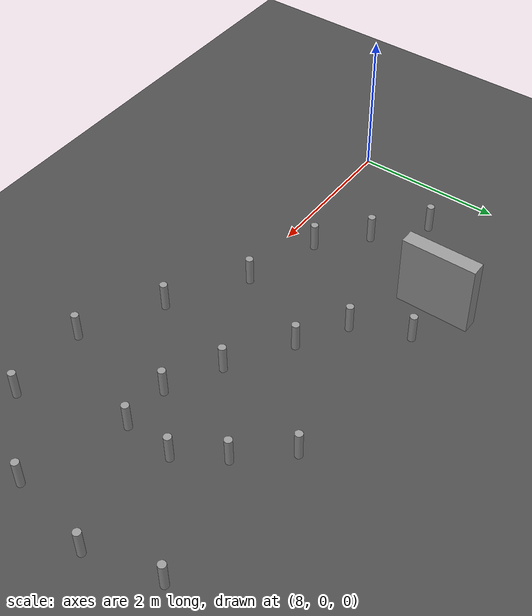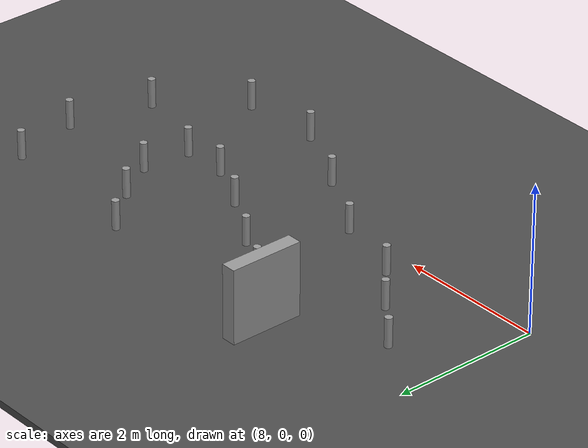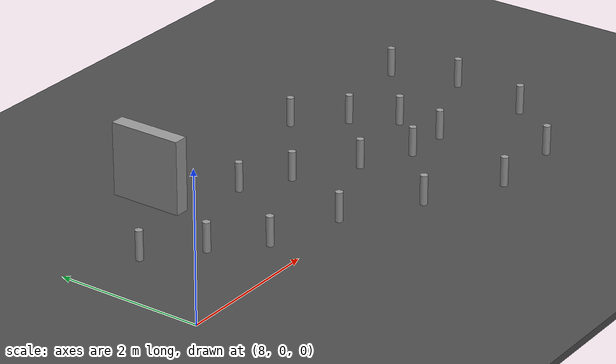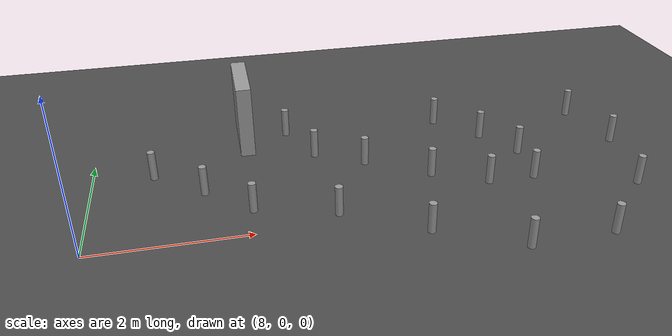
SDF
<sdf version="1.7">
 <world name="default">
  <model name="ground_plane">
   <static>1</static>
   <link name="link">
    <collision name="collision">
     <geometry><plane><normal>0 0 1</normal><size>100 100</size></plane></geometry>
     <surface>
      <contact><collide_bitmask>65535</collide_bitmask></contact>
      <friction><ode><mu>100</mu><mu2>50</mu2></ode></friction>
     </surface>
    </collision>
    <visual name="visual">
     <cast_shadows>0</cast_shadows>
     <geometry><plane><normal>0 0 1</normal><size>100 100</size></plane></geometry>
     <material>
      <script><uri>file://media/materials/scripts/gazebo.material</uri><name>Gazebo/Grey</name></script>
     </material>
    </visual>
   </link>
  </model>
  <model name="Cone_clone_9">
   <link name="link_1">
    <inertial>
     <mass>1</mass>
     <inertia><ixx>0.145833</ixx><ixy>0</ixy><ixz>0</ixz><iyy>0.145833</iyy><iyz>0</iyz><izz>0.125</izz></inertia>
    </inertial>
    <visual name="visual">
     <geometry><cylinder><radius>0.05</radius><length>0.4</length></cylinder></geometry>
     <material>
      <lighting>1</lighting>
      <script><uri>file://media/materials/scripts/gazebo.material</uri><name>Gazebo/Grey</name></script>
      <shader type="pixel"><normal_map>__default__</normal_map></shader>
      <ambient>1 1 1 1</ambient>
      <diffuse>1 1 1 1</diffuse>
      <specular>0.01 0.01 0.01 1</specular>
      <emissive>0 0 0 1</emissive>
     </material>
    </visual>
    <collision name="collision">
     <geometry><cylinder><radius>0.05</radius><length>0.4</length></cylinder></geometry>
     <surface>
      <friction>
       <ode><mu>1</mu><mu2>1</mu2><fdir1>0 0 0</fdir1><slip1>0</slip1><slip2>0</slip2></ode>
       <torsional>
        <coefficient>1</coefficient>
        <patch_radius>0</patch_radius>
        <surface_radius>0</surface_radius>
        <use_patch_radius>1</use_patch_radius>
        <ode><slip>0</slip></ode>
       </torsional>
      </friction>
      <bounce><restitution_coefficient>0</restitution_coefficient><threshold>1e+06</threshold></bounce>
      <contact>
       <collide_without_contact>0</collide_without_contact>
       <collide_without_contact_bitmask>1</collide_without_contact_bitmask>
       <collide_bitmask>1</collide_bitmask>
       <ode>
        <soft_cfm>0</soft_cfm>
        <soft_erp>0.2</soft_erp>
        <kp>1e+13</kp>
        <kd>1</kd>
        <max_vel>0.01</max_vel>
        <min_depth>0</min_depth>
       </ode>
       <bullet>
        <split_impulse>1</split_impulse>
        <split_impulse_penetration_threshold>-0.01</split_impulse_penetration_threshold>
        <soft_cfm>0</soft_cfm>
        <soft_erp>0.2</soft_erp>
        <kp>1e+13</kp>
        <kd>1</kd>
       </bullet>
      </contact>
     </surface>
    </collision>
   </link>
   <static>0</static>
   <pose>10.974 1.61904 0.249999 -4.4e-05 8.3e-05 6.8e-05</pose>
  </model>
  <model name="Cone_clone_10">
   <link name="link_1">
    <inertial>
     <mass>1</mass>
     <inertia><ixx>0.145833</ixx><ixy>0</ixy><ixz>0</ixz><iyy>0.145833</iyy><iyz>0</iyz><izz>0.125</izz></inertia>
    </inertial>
    <visual name="visual">
     <geometry><cylinder><radius>0.05</radius><length>0.4</length></cylinder></geometry>
     <material>
      <lighting>1</lighting>
      <script><uri>file://media/materials/scripts/gazebo.material</uri><name>Gazebo/Grey</name></script>
      <shader type="pixel"><normal_map>__default__</normal_map></shader>
      <ambient>1 1 1 1</ambient>
      <diffuse>1 1 1 1</diffuse>
      <specular>0.01 0.01 0.01 1</specular>
      <emissive>0 0 0 1</emissive>
     </material>
    </visual>
    <collision name="collision">
     <geometry><cylinder><radius>0.05</radius><length>0.4</length></cylinder></geometry>
     <surface>
      <friction>
       <ode><mu>1</mu><mu2>1</mu2><fdir1>0 0 0</fdir1><slip1>0</slip1><slip2>0</slip2></ode>
       <torsional>
        <coefficient>1</coefficient>
        <patch_radius>0</patch_radius>
        <surface_radius>0</surface_radius>
        <use_patch_radius>1</use_patch_radius>
        <ode><slip>0</slip></ode>
       </torsional>
      </friction>
      <bounce><restitution_coefficient>0</restitution_coefficient><threshold>1e+06</threshold></bounce>
      <contact>
       <collide_without_contact>0</collide_without_contact>
       <collide_without_contact_bitmask>1</collide_without_contact_bitmask>
       <collide_bitmask>1</collide_bitmask>
       <ode>
        <soft_cfm>0</soft_cfm>
        <soft_erp>0.2</soft_erp>
        <kp>1e+13</kp>
        <kd>1</kd>
        <max_vel>0.01</max_vel>
        <min_depth>0</min_depth>
       </ode>
       <bullet>
        <split_impulse>1</split_impulse>
        <split_impulse_penetration_threshold>-0.01</split_impulse_penetration_threshold>
        <soft_cfm>0</soft_cfm>
        <soft_erp>0.2</soft_erp>
        <kp>1e+13</kp>
        <kd>1</kd>
       </bullet>
      </contact>
     </surface>
    </collision>
   </link>
   <static>0</static>
   <pose>11.6072 1.25623 0.25 -7.7e-05 6.1e-05 8.5e-05</pose>
  </model>
  <model name="Cone_clone_11">
   <link name="link_1">
    <inertial>
     <mass>1</mass>
     <inertia><ixx>0.145833</ixx><ixy>0</ixy><ixz>0</ixz><iyy>0.145833</iyy><iyz>0</iyz><izz>0.125</izz></inertia>
    </inertial>
    <visual name="visual">
     <geometry><cylinder><radius>0.05</radius><length>0.4</length></cylinder></geometry>
     <material>
      <lighting>1</lighting>
      <script><uri>file://media/materials/scripts/gazebo.material</uri><name>Gazebo/Grey</name></script>
      <shader type="pixel"><normal_map>__default__</normal_map></shader>
      <ambient>1 1 1 1</ambient>
      <diffuse>1 1 1 1</diffuse>
      <specular>0.01 0.01 0.01 1</specular>
      <emissive>0 0 0 1</emissive>
     </material>
    </visual>
    <collision name="collision">
     <geometry><cylinder><radius>0.05</radius><length>0.4</length></cylinder></geometry>
     <surface>
      <friction>
       <ode><mu>1</mu><mu2>1</mu2><fdir1>0 0 0</fdir1><slip1>0</slip1><slip2>0</slip2></ode>
       <torsional>
        <coefficient>1</coefficient>
        <patch_radius>0</patch_radius>
        <surface_radius>0</surface_radius>
        <use_patch_radius>1</use_patch_radius>
        <ode><slip>0</slip></ode>
       </torsional>
      </friction>
      <bounce><restitution_coefficient>0</restitution_coefficient><threshold>1e+06</threshold></bounce>
      <contact>
       <collide_without_contact>0</collide_without_contact>
       <collide_without_contact_bitmask>1</collide_without_contact_bitmask>
       <collide_bitmask>1</collide_bitmask>
       <ode>
        <soft_cfm>0</soft_cfm>
        <soft_erp>0.2</soft_erp>
        <kp>1e+13</kp>
        <kd>1</kd>
        <max_vel>0.01</max_vel>
        <min_depth>0</min_depth>
       </ode>
       <bullet>
        <split_impulse>1</split_impulse>
        <split_impulse_penetration_threshold>-0.01</split_impulse_penetration_threshold>
        <soft_cfm>0</soft_cfm>
        <soft_erp>0.2</soft_erp>
        <kp>1e+13</kp>
        <kd>1</kd>
       </bullet>
      </contact>
     </surface>
    </collision>
   </link>
   <static>0</static>
   <pose>12.4053 0.765212 0.25 -7.7e-05 6.1e-05 8.4e-05</pose>
  </model>
  <model name="Cone_clone_12">
   <link name="link_1">
    <inertial>
     <mass>1</mass>
     <inertia><ixx>0.145833</ixx><ixy>0</ixy><ixz>0</ixz><iyy>0.145833</iyy><iyz>0</iyz><izz>0.125</izz></inertia>
    </inertial>
    <visual name="visual">
     <geometry><cylinder><radius>0.05</radius><length>0.4</length></cylinder></geometry>
     <material>
      <lighting>1</lighting>
      <script><uri>file://media/materials/scripts/gazebo.material</uri><name>Gazebo/Grey</name></script>
      <shader type="pixel"><normal_map>__default__</normal_map></shader>
      <ambient>1 1 1 1</ambient>
      <diffuse>1 1 1 1</diffuse>
      <specular>0.01 0.01 0.01 1</specular>
      <emissive>0 0 0 1</emissive>
     </material>
    </visual>
    <collision name="collision">
     <geometry><cylinder><radius>0.05</radius><length>0.4</length></cylinder></geometry>
     <surface>
      <friction>
       <ode><mu>1</mu><mu2>1</mu2><fdir1>0 0 0</fdir1><slip1>0</slip1><slip2>0</slip2></ode>
       <torsional>
        <coefficient>1</coefficient>
        <patch_radius>0</patch_radius>
        <surface_radius>0</surface_radius>
        <use_patch_radius>1</use_patch_radius>
        <ode><slip>0</slip></ode>
       </torsional>
      </friction>
      <bounce><restitution_coefficient>0</restitution_coefficient><threshold>1e+06</threshold></bounce>
      <contact>
       <collide_without_contact>0</collide_without_contact>
       <collide_without_contact_bitmask>1</collide_without_contact_bitmask>
       <collide_bitmask>1</collide_bitmask>
       <ode>
        <soft_cfm>0</soft_cfm>
        <soft_erp>0.2</soft_erp>
        <kp>1e+13</kp>
        <kd>1</kd>
        <max_vel>0.01</max_vel>
        <min_depth>0</min_depth>
       </ode>
       <bullet>
        <split_impulse>1</split_impulse>
        <split_impulse_penetration_threshold>-0.01</split_impulse_penetration_threshold>
        <soft_cfm>0</soft_cfm>
        <soft_erp>0.2</soft_erp>
        <kp>1e+13</kp>
        <kd>1</kd>
       </bullet>
      </contact>
     </surface>
    </collision>
   </link>
   <static>0</static>
   <pose>13.0926 0.421904 0.250002 -2.2e-05 9.1e-05 8.3e-05</pose>
  </model>
  <model name="Cone_clone_13">
   <link name="link_1">
    <inertial>
     <mass>1</mass>
     <inertia><ixx>0.145833</ixx><ixy>0</ixy><ixz>0</ixz><iyy>0.145833</iyy><iyz>0</iyz><izz>0.125</izz></inertia>
    </inertial>
    <visual name="visual">
     <geometry><cylinder><radius>0.05</radius><length>0.4</length></cylinder></geometry>
     <material>
      <lighting>1</lighting>
      <script><uri>file://media/materials/scripts/gazebo.material</uri><name>Gazebo/Grey</name></script>
      <shader type="pixel"><normal_map>__default__</normal_map></shader>
      <ambient>1 1 1 1</ambient>
      <diffuse>1 1 1 1</diffuse>
      <specular>0.01 0.01 0.01 1</specular>
      <emissive>0 0 0 1</emissive>
     </material>
    </visual>
    <collision name="collision">
     <geometry><cylinder><radius>0.05</radius><length>0.4</length></cylinder></geometry>
     <surface>
      <friction>
       <ode><mu>1</mu><mu2>1</mu2><fdir1>0 0 0</fdir1><slip1>0</slip1><slip2>0</slip2></ode>
       <torsional>
        <coefficient>1</coefficient>
        <patch_radius>0</patch_radius>
        <surface_radius>0</surface_radius>
        <use_patch_radius>1</use_patch_radius>
        <ode><slip>0</slip></ode>
       </torsional>
      </friction>
      <bounce><restitution_coefficient>0</restitution_coefficient><threshold>1e+06</threshold></bounce>
      <contact>
       <collide_without_contact>0</collide_without_contact>
       <collide_without_contact_bitmask>1</collide_without_contact_bitmask>
       <collide_bitmask>1</collide_bitmask>
       <ode>
        <soft_cfm>0</soft_cfm>
        <soft_erp>0.2</soft_erp>
        <kp>1e+13</kp>
        <kd>1</kd>
        <max_vel>0.01</max_vel>
        <min_depth>0</min_depth>
       </ode>
       <bullet>
        <split_impulse>1</split_impulse>
        <split_impulse_penetration_threshold>-0.01</split_impulse_penetration_threshold>
        <soft_cfm>0</soft_cfm>
        <soft_erp>0.2</soft_erp>
        <kp>1e+13</kp>
        <kd>1</kd>
       </bullet>
      </contact>
     </surface>
    </collision>
   </link>
   <static>0</static>
   <pose>13.7188 0.418644 0.25 -7.3e-05 6.5e-05 9e-05</pose>
  </model>
  <model name="Cone_clone_14">
   <link name="link_1">
    <inertial>
     <mass>1</mass>
     <inertia><ixx>0.145833</ixx><ixy>0</ixy><ixz>0</ixz><iyy>0.145833</iyy><iyz>0</iyz><izz>0.125</izz></inertia>
    </inertial>
    <visual name="visual">
     <geometry><cylinder><radius>0.05</radius><length>0.4</length></cylinder></geometry>
     <material>
      <lighting>1</lighting>
      <script><uri>file://media/materials/scripts/gazebo.material</uri><name>Gazebo/Grey</name></script>
      <shader type="pixel"><normal_map>__default__</normal_map></shader>
      <ambient>1 1 1 1</ambient>
      <diffuse>1 1 1 1</diffuse>
      <specular>0.01 0.01 0.01 1</specular>
      <emissive>0 0 0 1</emissive>
     </material>
    </visual>
    <collision name="collision">
     <geometry><cylinder><radius>0.05</radius><length>0.4</length></cylinder></geometry>
     <surface>
      <friction>
       <ode><mu>1</mu><mu2>1</mu2><fdir1>0 0 0</fdir1><slip1>0</slip1><slip2>0</slip2></ode>
       <torsional>
        <coefficient>1</coefficient>
        <patch_radius>0</patch_radius>
        <surface_radius>0</surface_radius>
        <use_patch_radius>1</use_patch_radius>
        <ode><slip>0</slip></ode>
       </torsional>
      </friction>
      <bounce><restitution_coefficient>0</restitution_coefficient><threshold>1e+06</threshold></bounce>
      <contact>
       <collide_without_contact>0</collide_without_contact>
       <collide_without_contact_bitmask>1</collide_without_contact_bitmask>
       <collide_bitmask>1</collide_bitmask>
       <ode>
        <soft_cfm>0</soft_cfm>
        <soft_erp>0.2</soft_erp>
        <kp>1e+13</kp>
        <kd>1</kd>
        <max_vel>0.01</max_vel>
        <min_depth>0</min_depth>
       </ode>
       <bullet>
        <split_impulse>1</split_impulse>
        <split_impulse_penetration_threshold>-0.01</split_impulse_penetration_threshold>
        <soft_cfm>0</soft_cfm>
        <soft_erp>0.2</soft_erp>
        <kp>1e+13</kp>
        <kd>1</kd>
       </bullet>
      </contact>
     </surface>
    </collision>
   </link>
   <static>0</static>
   <pose>13.7754 1.08409 0.25 -7.6e-05 6.2e-05 8.5e-05</pose>
  </model>
  <model name="Cone_clone_15">
   <link name="link_1">
    <inertial>
     <mass>1</mass>
     <inertia><ixx>0.145833</ixx><ixy>0</ixy><ixz>0</ixz><iyy>0.145833</iyy><iyz>0</iyz><izz>0.125</izz></inertia>
    </inertial>
    <visual name="visual">
     <geometry><cylinder><radius>0.05</radius><length>0.4</length></cylinder></geometry>
     <material>
      <lighting>1</lighting>
      <script><uri>file://media/materials/scripts/gazebo.material</uri><name>Gazebo/Grey</name></script>
      <shader type="pixel"><normal_map>__default__</normal_map></shader>
      <ambient>1 1 1 1</ambient>
      <diffuse>1 1 1 1</diffuse>
      <specular>0.01 0.01 0.01 1</specular>
      <emissive>0 0 0 1</emissive>
     </material>
    </visual>
    <collision name="collision">
     <geometry><cylinder><radius>0.05</radius><length>0.4</length></cylinder></geometry>
     <surface>
      <friction>
       <ode><mu>1</mu><mu2>1</mu2><fdir1>0 0 0</fdir1><slip1>0</slip1><slip2>0</slip2></ode>
       <torsional>
        <coefficient>1</coefficient>
        <patch_radius>0</patch_radius>
        <surface_radius>0</surface_radius>
        <use_patch_radius>1</use_patch_radius>
        <ode><slip>0</slip></ode>
       </torsional>
      </friction>
      <bounce><restitution_coefficient>0</restitution_coefficient><threshold>1e+06</threshold></bounce>
      <contact>
       <collide_without_contact>0</collide_without_contact>
       <collide_without_contact_bitmask>1</collide_without_contact_bitmask>
       <collide_bitmask>1</collide_bitmask>
       <ode>
        <soft_cfm>0</soft_cfm>
        <soft_erp>0.2</soft_erp>
        <kp>1e+13</kp>
        <kd>1</kd>
        <max_vel>0.01</max_vel>
        <min_depth>0</min_depth>
       </ode>
       <bullet>
        <split_impulse>1</split_impulse>
        <split_impulse_penetration_threshold>-0.01</split_impulse_penetration_threshold>
        <soft_cfm>0</soft_cfm>
        <soft_erp>0.2</soft_erp>
        <kp>1e+13</kp>
        <kd>1</kd>
       </bullet>
      </contact>
     </surface>
    </collision>
   </link>
   <static>0</static>
   <pose>13.4188 1.64424 0.25 -7.6e-05 6.1e-05 9.4e-05</pose>
  </model>
  <model name="Cone_clone_16">
   <link name="link_1">
    <inertial>
     <mass>1</mass>
     <inertia><ixx>0.145833</ixx><ixy>0</ixy><ixz>0</ixz><iyy>0.145833</iyy><iyz>0</iyz><izz>0.125</izz></inertia>
    </inertial>
    <visual name="visual">
     <geometry><cylinder><radius>0.05</radius><length>0.4</length></cylinder></geometry>
     <material>
      <lighting>1</lighting>
      <script><uri>file://media/materials/scripts/gazebo.material</uri><name>Gazebo/Grey</name></script>
      <shader type="pixel"><normal_map>__default__</normal_map></shader>
      <ambient>1 1 1 1</ambient>
      <diffuse>1 1 1 1</diffuse>
      <specular>0.01 0.01 0.01 1</specular>
      <emissive>0 0 0 1</emissive>
     </material>
    </visual>
    <collision name="collision">
     <geometry><cylinder><radius>0.05</radius><length>0.4</length></cylinder></geometry>
     <surface>
      <friction>
       <ode><mu>1</mu><mu2>1</mu2><fdir1>0 0 0</fdir1><slip1>0</slip1><slip2>0</slip2></ode>
       <torsional>
        <coefficient>1</coefficient>
        <patch_radius>0</patch_radius>
        <surface_radius>0</surface_radius>
        <use_patch_radius>1</use_patch_radius>
        <ode><slip>0</slip></ode>
       </torsional>
      </friction>
      <bounce><restitution_coefficient>0</restitution_coefficient><threshold>1e+06</threshold></bounce>
      <contact>
       <collide_without_contact>0</collide_without_contact>
       <collide_without_contact_bitmask>1</collide_without_contact_bitmask>
       <collide_bitmask>1</collide_bitmask>
       <ode>
        <soft_cfm>0</soft_cfm>
        <soft_erp>0.2</soft_erp>
        <kp>1e+13</kp>
        <kd>1</kd>
        <max_vel>0.01</max_vel>
        <min_depth>0</min_depth>
       </ode>
       <bullet>
        <split_impulse>1</split_impulse>
        <split_impulse_penetration_threshold>-0.01</split_impulse_penetration_threshold>
        <soft_cfm>0</soft_cfm>
        <soft_erp>0.2</soft_erp>
        <kp>1e+13</kp>
        <kd>1</kd>
       </bullet>
      </contact>
     </surface>
    </collision>
   </link>
   <static>0</static>
   <pose>12.9016 2.21967 0.25 -7.6e-05 6.1e-05 8.8e-05</pose>
  </model>
  <model name="Obstacle_clone">
   <link name="link_4">
    <inertial>
     <mass>1</mass>
     <inertia>
      <ixx>0.166667</ixx>
      <ixy>0</ixy>
      <ixz>0</ixz>
      <iyy>0.166667</iyy>
      <iyz>0</iyz>
      <izz>0.166667</izz>
     </inertia>
    </inertial>
    <visual name="visual">
     <geometry><box><size>0.2 1 1</size></box></geometry>
     <material>
      <lighting>1</lighting>
      <script><uri>file://media/materials/scripts/gazebo.material</uri><name>Gazebo/Grey</name></script>
      <shader type="pixel"><normal_map>__default__</normal_map></shader>
      <ambient>0 0 0 1</ambient>
      <diffuse>0 0 0 1</diffuse>
      <specular>0.01 0.01 0.01 1</specular>
      <emissive>0 0 0 1</emissive>
     </material>
    </visual>
    <collision name="collision">
     <geometry><box><size>0.2 1 1</size></box></geometry>
     <surface>
      <friction>
       <ode><mu>1</mu><mu2>1</mu2><fdir1>0 0 0</fdir1><slip1>0</slip1><slip2>0</slip2></ode>
       <torsional>
        <coefficient>1</coefficient>
        <patch_radius>0</patch_radius>
        <surface_radius>0</surface_radius>
        <use_patch_radius>1</use_patch_radius>
        <ode><slip>0</slip></ode>
       </torsional>
      </friction>
      <bounce><restitution_coefficient>0</restitution_coefficient><threshold>1e+06</threshold></bounce>
      <contact>
       <collide_without_contact>0</collide_without_contact>
       <collide_without_contact_bitmask>1</collide_without_contact_bitmask>
       <collide_bitmask>1</collide_bitmask>
       <ode>
        <soft_cfm>0</soft_cfm>
        <soft_erp>0.2</soft_erp>
        <kp>1e+13</kp>
        <kd>1</kd>
        <max_vel>0.01</max_vel>
        <min_depth>0</min_depth>
       </ode>
       <bullet>
        <split_impulse>1</split_impulse>
        <split_impulse_penetration_threshold>-0.01</split_impulse_penetration_threshold>
        <soft_cfm>0</soft_cfm>
        <soft_erp>0.2</soft_erp>
        <kp>1e+13</kp>
        <kd>1</kd>
       </bullet>
      </contact>
     </surface>
    </collision>
   </link>
   <static>0</static>
   <pose>10.0711 2.31653 0.55 0 0 -6e-06</pose>
  </model>
  <model name="Cone_clone_9_clone">
   <link name="link_1">
    <inertial>
     <mass>1</mass>
     <inertia><ixx>0.145833</ixx><ixy>0</ixy><ixz>0</ixz><iyy>0.145833</iyy><iyz>0</iyz><izz>0.125</izz></inertia>
    </inertial>
    <visual name="visual">
     <geometry><cylinder><radius>0.05</radius><length>0.4</length></cylinder></geometry>
     <material>
      <lighting>1</lighting>
      <script><uri>file://media/materials/scripts/gazebo.material</uri><name>Gazebo/Grey</name></script>
      <shader type="pixel"><normal_map>__default__</normal_map></shader>
      <ambient>1 1 1 1</ambient>
      <diffuse>1 1 1 1</diffuse>
      <specular>0.01 0.01 0.01 1</specular>
      <emissive>0 0 0 1</emissive>
     </material>
    </visual>
    <collision name="collision">
     <geometry><cylinder><radius>0.05</radius><length>0.4</length></cylinder></geometry>
     <surface>
      <friction>
       <ode><mu>1</mu><mu2>1</mu2><fdir1>0 0 0</fdir1><slip1>0</slip1><slip2>0</slip2></ode>
       <torsional>
        <coefficient>1</coefficient>
        <patch_radius>0</patch_radius>
        <surface_radius>0</surface_radius>
        <use_patch_radius>1</use_patch_radius>
        <ode><slip>0</slip></ode>
       </torsional>
      </friction>
      <bounce><restitution_coefficient>0</restitution_coefficient><threshold>1e+06</threshold></bounce>
      <contact>
       <collide_without_contact>0</collide_without_contact>
       <collide_without_contact_bitmask>1</collide_without_contact_bitmask>
       <collide_bitmask>1</collide_bitmask>
       <ode>
        <soft_cfm>0</soft_cfm>
        <soft_erp>0.2</soft_erp>
        <kp>1e+13</kp>
        <kd>1</kd>
        <max_vel>0.01</max_vel>
        <min_depth>0</min_depth>
       </ode>
       <bullet>
        <split_impulse>1</split_impulse>
        <split_impulse_penetration_threshold>-0.01</split_impulse_penetration_threshold>
        <soft_cfm>0</soft_cfm>
        <soft_erp>0.2</soft_erp>
        <kp>1e+13</kp>
        <kd>1</kd>
       </bullet>
      </contact>
     </surface>
    </collision>
   </link>
   <static>0</static>
   <pose>10.0136 0.430466 0.25 -2.1e-05 5.9e-05 4.4e-05</pose>
  </model>
  <model name="Cone_clone_9_clone_0">
   <link name="link_1">
    <inertial>
     <mass>1</mass>
     <inertia><ixx>0.145833</ixx><ixy>0</ixy><ixz>0</ixz><iyy>0.145833</iyy><iyz>0</iyz><izz>0.125</izz></inertia>
    </inertial>
    <visual name="visual">
     <geometry><cylinder><radius>0.05</radius><length>0.4</length></cylinder></geometry>
     <material>
      <lighting>1</lighting>
      <script><uri>file://media/materials/scripts/gazebo.material</uri><name>Gazebo/Grey</name></script>
      <shader type="pixel"><normal_map>__default__</normal_map></shader>
      <ambient>1 1 1 1</ambient>
      <diffuse>1 1 1 1</diffuse>
      <specular>0.01 0.01 0.01 1</specular>
      <emissive>0 0 0 1</emissive>
     </material>
    </visual>
    <collision name="collision">
     <geometry><cylinder><radius>0.05</radius><length>0.4</length></cylinder></geometry>
     <surface>
      <friction>
       <ode><mu>1</mu><mu2>1</mu2><fdir1>0 0 0</fdir1><slip1>0</slip1><slip2>0</slip2></ode>
       <torsional>
        <coefficient>1</coefficient>
        <patch_radius>0</patch_radius>
        <surface_radius>0</surface_radius>
        <use_patch_radius>1</use_patch_radius>
        <ode><slip>0</slip></ode>
       </torsional>
      </friction>
      <bounce><restitution_coefficient>0</restitution_coefficient><threshold>1e+06</threshold></bounce>
      <contact>
       <collide_without_contact>0</collide_without_contact>
       <collide_without_contact_bitmask>1</collide_without_contact_bitmask>
       <collide_bitmask>1</collide_bitmask>
       <ode>
        <soft_cfm>0</soft_cfm>
        <soft_erp>0.2</soft_erp>
        <kp>1e+13</kp>
        <kd>1</kd>
        <max_vel>0.01</max_vel>
        <min_depth>0</min_depth>
       </ode>
       <bullet>
        <split_impulse>1</split_impulse>
        <split_impulse_penetration_threshold>-0.01</split_impulse_penetration_threshold>
        <soft_cfm>0</soft_cfm>
        <soft_erp>0.2</soft_erp>
        <kp>1e+13</kp>
        <kd>1</kd>
       </bullet>
      </contact>
     </surface>
    </collision>
   </link>
   <static>0</static>
   <pose>11.025 0.123066 0.25 -5.3e-05 7.8e-05 4.6e-05</pose>
  </model>
  <model name="Cone_clone_9_clone_1">
   <link name="link_1">
    <inertial>
     <mass>1</mass>
     <inertia><ixx>0.145833</ixx><ixy>0</ixy><ixz>0</ixz><iyy>0.145833</iyy><iyz>0</iyz><izz>0.125</izz></inertia>
    </inertial>
    <visual name="visual">
     <geometry><cylinder><radius>0.05</radius><length>0.4</length></cylinder></geometry>
     <material>
      <lighting>1</lighting>
      <script><uri>file://media/materials/scripts/gazebo.material</uri><name>Gazebo/Grey</name></script>
      <shader type="pixel"><normal_map>__default__</normal_map></shader>
      <ambient>1 1 1 1</ambient>
      <diffuse>1 1 1 1</diffuse>
      <specular>0.01 0.01 0.01 1</specular>
      <emissive>0 0 0 1</emissive>
     </material>
    </visual>
    <collision name="collision">
     <geometry><cylinder><radius>0.05</radius><length>0.4</length></cylinder></geometry>
     <surface>
      <friction>
       <ode><mu>1</mu><mu2>1</mu2><fdir1>0 0 0</fdir1><slip1>0</slip1><slip2>0</slip2></ode>
       <torsional>
        <coefficient>1</coefficient>
        <patch_radius>0</patch_radius>
        <surface_radius>0</surface_radius>
        <use_patch_radius>1</use_patch_radius>
        <ode><slip>0</slip></ode>
       </torsional>
      </friction>
      <bounce><restitution_coefficient>0</restitution_coefficient><threshold>1e+06</threshold></bounce>
      <contact>
       <collide_without_contact>0</collide_without_contact>
       <collide_without_contact_bitmask>1</collide_without_contact_bitmask>
       <collide_bitmask>1</collide_bitmask>
       <ode>
        <soft_cfm>0</soft_cfm>
        <soft_erp>0.2</soft_erp>
        <kp>1e+13</kp>
        <kd>1</kd>
        <max_vel>0.01</max_vel>
        <min_depth>0</min_depth>
       </ode>
       <bullet>
        <split_impulse>1</split_impulse>
        <split_impulse_penetration_threshold>-0.01</split_impulse_penetration_threshold>
        <soft_cfm>0</soft_cfm>
        <soft_erp>0.2</soft_erp>
        <kp>1e+13</kp>
        <kd>1</kd>
       </bullet>
      </contact>
     </surface>
    </collision>
   </link>
   <static>0</static>
   <pose>12.0168 -0.463126 0.249999 -6.7e-05 3.7e-05 4.5e-05</pose>
  </model>
  <model name="Cone_clone_9_clone_2">
   <link name="link_1">
    <inertial>
     <mass>1</mass>
     <inertia><ixx>0.145833</ixx><ixy>0</ixy><ixz>0</ixz><iyy>0.145833</iyy><iyz>0</iyz><izz>0.125</izz></inertia>
    </inertial>
    <visual name="visual">
     <geometry><cylinder><radius>0.05</radius><length>0.4</length></cylinder></geometry>
     <material>
      <lighting>1</lighting>
      <script><uri>file://media/materials/scripts/gazebo.material</uri><name>Gazebo/Grey</name></script>
      <shader type="pixel"><normal_map>__default__</normal_map></shader>
      <ambient>1 1 1 1</ambient>
      <diffuse>1 1 1 1</diffuse>
      <specular>0.01 0.01 0.01 1</specular>
      <emissive>0 0 0 1</emissive>
     </material>
    </visual>
    <collision name="collision">
     <geometry><cylinder><radius>0.05</radius><length>0.4</length></cylinder></geometry>
     <surface>
      <friction>
       <ode><mu>1</mu><mu2>1</mu2><fdir1>0 0 0</fdir1><slip1>0</slip1><slip2>0</slip2></ode>
       <torsional>
        <coefficient>1</coefficient>
        <patch_radius>0</patch_radius>
        <surface_radius>0</surface_radius>
        <use_patch_radius>1</use_patch_radius>
        <ode><slip>0</slip></ode>
       </torsional>
      </friction>
      <bounce><restitution_coefficient>0</restitution_coefficient><threshold>1e+06</threshold></bounce>
      <contact>
       <collide_without_contact>0</collide_without_contact>
       <collide_without_contact_bitmask>1</collide_without_contact_bitmask>
       <collide_bitmask>1</collide_bitmask>
       <ode>
        <soft_cfm>0</soft_cfm>
        <soft_erp>0.2</soft_erp>
        <kp>1e+13</kp>
        <kd>1</kd>
        <max_vel>0.01</max_vel>
        <min_depth>0</min_depth>
       </ode>
       <bullet>
        <split_impulse>1</split_impulse>
        <split_impulse_penetration_threshold>-0.01</split_impulse_penetration_threshold>
        <soft_cfm>0</soft_cfm>
        <soft_erp>0.2</soft_erp>
        <kp>1e+13</kp>
        <kd>1</kd>
       </bullet>
      </contact>
     </surface>
    </collision>
   </link>
   <static>0</static>
   <pose>13.037 -0.998943 0.250001 -2.8e-05 9e-05 2.6e-05</pose>
  </model>
  <model name="Cone_clone_9_clone_3">
   <link name="link_1">
    <inertial>
     <mass>1</mass>
     <inertia><ixx>0.145833</ixx><ixy>0</ixy><ixz>0</ixz><iyy>0.145833</iyy><iyz>0</iyz><izz>0.125</izz></inertia>
    </inertial>
    <visual name="visual">
     <geometry><cylinder><radius>0.05</radius><length>0.4</length></cylinder></geometry>
     <material>
      <lighting>1</lighting>
      <script><uri>file://media/materials/scripts/gazebo.material</uri><name>Gazebo/Grey</name></script>
      <shader type="pixel"><normal_map>__default__</normal_map></shader>
      <ambient>1 1 1 1</ambient>
      <diffuse>1 1 1 1</diffuse>
      <specular>0.01 0.01 0.01 1</specular>
      <emissive>0 0 0 1</emissive>
     </material>
    </visual>
    <collision name="collision">
     <geometry><cylinder><radius>0.05</radius><length>0.4</length></cylinder></geometry>
     <surface>
      <friction>
       <ode><mu>1</mu><mu2>1</mu2><fdir1>0 0 0</fdir1><slip1>0</slip1><slip2>0</slip2></ode>
       <torsional>
        <coefficient>1</coefficient>
        <patch_radius>0</patch_radius>
        <surface_radius>0</surface_radius>
        <use_patch_radius>1</use_patch_radius>
        <ode><slip>0</slip></ode>
       </torsional>
      </friction>
      <bounce><restitution_coefficient>0</restitution_coefficient><threshold>1e+06</threshold></bounce>
      <contact>
       <collide_without_contact>0</collide_without_contact>
       <collide_without_contact_bitmask>1</collide_without_contact_bitmask>
       <collide_bitmask>1</collide_bitmask>
       <ode>
        <soft_cfm>0</soft_cfm>
        <soft_erp>0.2</soft_erp>
        <kp>1e+13</kp>
        <kd>1</kd>
        <max_vel>0.01</max_vel>
        <min_depth>0</min_depth>
       </ode>
       <bullet>
        <split_impulse>1</split_impulse>
        <split_impulse_penetration_threshold>-0.01</split_impulse_penetration_threshold>
        <soft_cfm>0</soft_cfm>
        <soft_erp>0.2</soft_erp>
        <kp>1e+13</kp>
        <kd>1</kd>
       </bullet>
      </contact>
     </surface>
    </collision>
   </link>
   <static>0</static>
   <pose>14.1276 -0.953337 0.25 -2.5e-05 4.6e-05 8.1e-05</pose>
  </model>
  <model name="Cone_clone_9_clone_4">
   <link name="link_1">
    <inertial>
     <mass>1</mass>
     <inertia><ixx>0.145833</ixx><ixy>0</ixy><ixz>0</ixz><iyy>0.145833</iyy><iyz>0</iyz><izz>0.125</izz></inertia>
    </inertial>
    <visual name="visual">
     <geometry><cylinder><radius>0.05</radius><length>0.4</length></cylinder></geometry>
     <material>
      <lighting>1</lighting>
      <script><uri>file://media/materials/scripts/gazebo.material</uri><name>Gazebo/Grey</name></script>
      <shader type="pixel"><normal_map>__default__</normal_map></shader>
      <ambient>1 1 1 1</ambient>
      <diffuse>1 1 1 1</diffuse>
      <specular>0.01 0.01 0.01 1</specular>
      <emissive>0 0 0 1</emissive>
     </material>
    </visual>
    <collision name="collision">
     <geometry><cylinder><radius>0.05</radius><length>0.4</length></cylinder></geometry>
     <surface>
      <friction>
       <ode><mu>1</mu><mu2>1</mu2><fdir1>0 0 0</fdir1><slip1>0</slip1><slip2>0</slip2></ode>
       <torsional>
        <coefficient>1</coefficient>
        <patch_radius>0</patch_radius>
        <surface_radius>0</surface_radius>
        <use_patch_radius>1</use_patch_radius>
        <ode><slip>0</slip></ode>
       </torsional>
      </friction>
      <bounce><restitution_coefficient>0</restitution_coefficient><threshold>1e+06</threshold></bounce>
      <contact>
       <collide_without_contact>0</collide_without_contact>
       <collide_without_contact_bitmask>1</collide_without_contact_bitmask>
       <collide_bitmask>1</collide_bitmask>
       <ode>
        <soft_cfm>0</soft_cfm>
        <soft_erp>0.2</soft_erp>
        <kp>1e+13</kp>
        <kd>1</kd>
        <max_vel>0.01</max_vel>
        <min_depth>0</min_depth>
       </ode>
       <bullet>
        <split_impulse>1</split_impulse>
        <split_impulse_penetration_threshold>-0.01</split_impulse_penetration_threshold>
        <soft_cfm>0</soft_cfm>
        <soft_erp>0.2</soft_erp>
        <kp>1e+13</kp>
        <kd>1</kd>
       </bullet>
      </contact>
     </surface>
    </collision>
   </link>
   <static>0</static>
   <pose>14.9838 -0.018053 0.25 -7.1e-05 6.7e-05 -0.00021</pose>
  </model>
  <model name="Cone_clone_9_clone_5">
   <link name="link_1">
    <inertial>
     <mass>1</mass>
     <inertia><ixx>0.145833</ixx><ixy>0</ixy><ixz>0</ixz><iyy>0.145833</iyy><iyz>0</iyz><izz>0.125</izz></inertia>
    </inertial>
    <visual name="visual">
     <geometry><cylinder><radius>0.05</radius><length>0.4</length></cylinder></geometry>
     <material>
      <lighting>1</lighting>
      <script><uri>file://media/materials/scripts/gazebo.material</uri><name>Gazebo/Grey</name></script>
      <shader type="pixel"><normal_map>__default__</normal_map></shader>
      <ambient>1 1 1 1</ambient>
      <diffuse>1 1 1 1</diffuse>
      <specular>0.01 0.01 0.01 1</specular>
      <emissive>0 0 0 1</emissive>
     </material>
    </visual>
    <collision name="collision">
     <geometry><cylinder><radius>0.05</radius><length>0.4</length></cylinder></geometry>
     <surface>
      <friction>
       <ode><mu>1</mu><mu2>1</mu2><fdir1>0 0 0</fdir1><slip1>0</slip1><slip2>0</slip2></ode>
       <torsional>
        <coefficient>1</coefficient>
        <patch_radius>0</patch_radius>
        <surface_radius>0</surface_radius>
        <use_patch_radius>1</use_patch_radius>
        <ode><slip>0</slip></ode>
       </torsional>
      </friction>
      <bounce><restitution_coefficient>0</restitution_coefficient><threshold>1e+06</threshold></bounce>
      <contact>
       <collide_without_contact>0</collide_without_contact>
       <collide_without_contact_bitmask>1</collide_without_contact_bitmask>
       <collide_bitmask>1</collide_bitmask>
       <ode>
        <soft_cfm>0</soft_cfm>
        <soft_erp>0.2</soft_erp>
        <kp>1e+13</kp>
        <kd>1</kd>
        <max_vel>0.01</max_vel>
        <min_depth>0</min_depth>
       </ode>
       <bullet>
        <split_impulse>1</split_impulse>
        <split_impulse_penetration_threshold>-0.01</split_impulse_penetration_threshold>
        <soft_cfm>0</soft_cfm>
        <soft_erp>0.2</soft_erp>
        <kp>1e+13</kp>
        <kd>1</kd>
       </bullet>
      </contact>
     </surface>
    </collision>
   </link>
   <static>0</static>
   <pose>15.2244 1.11139 0.249999 -6.2e-05 5e-05 -0.000192</pose>
  </model>
  <model name="Cone_clone_9_clone_6">
   <link name="link_1">
    <inertial>
     <mass>1</mass>
     <inertia><ixx>0.145833</ixx><ixy>0</ixy><ixz>0</ixz><iyy>0.145833</iyy><iyz>0</iyz><izz>0.125</izz></inertia>
    </inertial>
    <visual name="visual">
     <geometry><cylinder><radius>0.05</radius><length>0.4</length></cylinder></geometry>
     <material>
      <lighting>1</lighting>
      <script><uri>file://media/materials/scripts/gazebo.material</uri><name>Gazebo/Grey</name></script>
      <shader type="pixel"><normal_map>__default__</normal_map></shader>
      <ambient>1 1 1 1</ambient>
      <diffuse>1 1 1 1</diffuse>
      <specular>0.01 0.01 0.01 1</specular>
      <emissive>0 0 0 1</emissive>
     </material>
    </visual>
    <collision name="collision">
     <geometry><cylinder><radius>0.05</radius><length>0.4</length></cylinder></geometry>
     <surface>
      <friction>
       <ode><mu>1</mu><mu2>1</mu2><fdir1>0 0 0</fdir1><slip1>0</slip1><slip2>0</slip2></ode>
       <torsional>
        <coefficient>1</coefficient>
        <patch_radius>0</patch_radius>
        <surface_radius>0</surface_radius>
        <use_patch_radius>1</use_patch_radius>
        <ode><slip>0</slip></ode>
       </torsional>
      </friction>
      <bounce><restitution_coefficient>0</restitution_coefficient><threshold>1e+06</threshold></bounce>
      <contact>
       <collide_without_contact>0</collide_without_contact>
       <collide_without_contact_bitmask>1</collide_without_contact_bitmask>
       <collide_bitmask>1</collide_bitmask>
       <ode>
        <soft_cfm>0</soft_cfm>
        <soft_erp>0.2</soft_erp>
        <kp>1e+13</kp>
        <kd>1</kd>
        <max_vel>0.01</max_vel>
        <min_depth>0</min_depth>
       </ode>
       <bullet>
        <split_impulse>1</split_impulse>
        <split_impulse_penetration_threshold>-0.01</split_impulse_penetration_threshold>
        <soft_cfm>0</soft_cfm>
        <soft_erp>0.2</soft_erp>
        <kp>1e+13</kp>
        <kd>1</kd>
       </bullet>
      </contact>
     </surface>
    </collision>
   </link>
   <static>0</static>
   <pose>14.9997 2.04595 0.25 -8.2e-05 5.2e-05 -0.000192</pose>
  </model>
  <model name="Cone_clone_18_clone_8">
   <link name="link_1">
    <inertial>
     <mass>1</mass>
     <inertia><ixx>0.145833</ixx><ixy>0</ixy><ixz>0</ixz><iyy>0.145833</iyy><iyz>0</iyz><izz>0.125</izz></inertia>
    </inertial>
    <visual name="visual">
     <geometry><cylinder><radius>0.05</radius><length>0.4</length></cylinder></geometry>
     <material>
      <lighting>1</lighting>
      <script><uri>file://media/materials/scripts/gazebo.material</uri><name>Gazebo/Grey</name></script>
      <shader type="pixel"><normal_map>__default__</normal_map></shader>
      <ambient>1 1 1 1</ambient>
      <diffuse>1 1 1 1</diffuse>
      <specular>0.01 0.01 0.01 1</specular>
      <emissive>0 0 0 1</emissive>
     </material>
    </visual>
    <collision name="collision">
     <geometry><cylinder><radius>0.05</radius><length>0.4</length></cylinder></geometry>
     <surface>
      <friction>
       <ode><mu>1</mu><mu2>1</mu2><fdir1>0 0 0</fdir1><slip1>0</slip1><slip2>0</slip2></ode>
       <torsional>
        <coefficient>1</coefficient>
        <patch_radius>0</patch_radius>
        <surface_radius>0</surface_radius>
        <use_patch_radius>1</use_patch_radius>
        <ode><slip>0</slip></ode>
       </torsional>
      </friction>
      <bounce><restitution_coefficient>0</restitution_coefficient><threshold>1e+06</threshold></bounce>
      <contact>
       <collide_without_contact>0</collide_without_contact>
       <collide_without_contact_bitmask>1</collide_without_contact_bitmask>
       <collide_bitmask>1</collide_bitmask>
       <ode>
        <soft_cfm>0</soft_cfm>
        <soft_erp>0.2</soft_erp>
        <kp>1e+13</kp>
        <kd>1</kd>
        <max_vel>0.01</max_vel>
        <min_depth>0</min_depth>
       </ode>
       <bullet>
        <split_impulse>1</split_impulse>
        <split_impulse_penetration_threshold>-0.01</split_impulse_penetration_threshold>
        <soft_cfm>0</soft_cfm>
        <soft_erp>0.2</soft_erp>
        <kp>1e+13</kp>
        <kd>1</kd>
       </bullet>
      </contact>
     </surface>
    </collision>
   </link>
   <static>0</static>
   <pose>8.80459 1.47944 0.249997 0 8.9e-05 5.7e-05</pose>
  </model>
  <model name="asphalt_plane">
   <static>1</static>
   <link name="link">
    <collision name="collision"><geometry><box><size>20 20 0.1</size></box></geometry></collision>
    <visual name="visual">
     <cast_shadows>0</cast_shadows>
     <geometry><box><size>20 20 0.1</size></box></geometry>
     <material>
      <script>
       <uri>model://asphalt_plane/materials/scripts</uri>
       <uri>model://asphalt_plane/materials/textures</uri>
       <name>vrc/asphalt</name>
      </script>
     </material>
    </visual>
   </link>
   <pose>8.33296 1.58743 0 0 -0 0</pose>
  </model>
  <model name="Cone_clone_18_clone_8_clone">
   <link name="link_1">
    <inertial>
     <mass>1</mass>
     <inertia><ixx>0.145833</ixx><ixy>0</ixy><ixz>0</ixz><iyy>0.145833</iyy><iyz>0</iyz><izz>0.125</izz></inertia>
    </inertial>
    <visual name="visual">
     <geometry><cylinder><radius>0.05</radius><length>0.4</length></cylinder></geometry>
     <material>
      <lighting>1</lighting>
      <script><uri>file://media/materials/scripts/gazebo.material</uri><name>Gazebo/Grey</name></script>
      <shader type="pixel"><normal_map>__default__</normal_map></shader>
      <ambient>1 1 1 1</ambient>
      <diffuse>1 1 1 1</diffuse>
      <specular>0.01 0.01 0.01 1</specular>
      <emissive>0 0 0 1</emissive>
     </material>
    </visual>
    <collision name="collision">
     <geometry><cylinder><radius>0.05</radius><length>0.4</length></cylinder></geometry>
     <surface>
      <friction>
       <ode><mu>1</mu><mu2>1</mu2><fdir1>0 0 0</fdir1><slip1>0</slip1><slip2>0</slip2></ode>
       <torsional>
        <coefficient>1</coefficient>
        <patch_radius>0</patch_radius>
        <surface_radius>0</surface_radius>
        <use_patch_radius>1</use_patch_radius>
        <ode><slip>0</slip></ode>
       </torsional>
      </friction>
      <bounce><restitution_coefficient>0</restitution_coefficient><threshold>1e+06</threshold></bounce>
      <contact>
       <collide_without_contact>0</collide_without_contact>
       <collide_without_contact_bitmask>1</collide_without_contact_bitmask>
       <collide_bitmask>1</collide_bitmask>
       <ode>
        <soft_cfm>0</soft_cfm>
        <soft_erp>0.2</soft_erp>
        <kp>1e+13</kp>
        <kd>1</kd>
        <max_vel>0.01</max_vel>
        <min_depth>0</min_depth>
       </ode>
       <bullet>
        <split_impulse>1</split_impulse>
        <split_impulse_penetration_threshold>-0.01</split_impulse_penetration_threshold>
        <soft_cfm>0</soft_cfm>
        <soft_erp>0.2</soft_erp>
        <kp>1e+13</kp>
        <kd>1</kd>
       </bullet>
      </contact>
     </surface>
    </collision>
   </link>
   <static>0</static>
   <pose>9.44338 0.954771 0.249997 -3.8e-05 4.5e-05 7.3e-05</pose>
  </model>
  <model name="Cone_clone_18_clone_8_clone_2">
   <link name="link_1">
    <inertial>
     <mass>1</mass>
     <inertia><ixx>0.145833</ixx><ixy>0</ixy><ixz>0</ixz><iyy>0.145833</iyy><iyz>0</iyz><izz>0.125</izz></inertia>
    </inertial>
    <visual name="visual">
     <geometry><cylinder><radius>0.05</radius><length>0.4</length></cylinder></geometry>
     <material>
      <lighting>1</lighting>
      <script><uri>file://media/materials/scripts/gazebo.material</uri><name>Gazebo/Grey</name></script>
      <shader type="pixel"><normal_map>__default__</normal_map></shader>
      <ambient>1 1 1 1</ambient>
      <diffuse>1 1 1 1</diffuse>
      <specular>0.01 0.01 0.01 1</specular>
      <emissive>0 0 0 1</emissive>
     </material>
    </visual>
    <collision name="collision">
     <geometry><cylinder><radius>0.05</radius><length>0.4</length></cylinder></geometry>
     <surface>
      <friction>
       <ode><mu>1</mu><mu2>1</mu2><fdir1>0 0 0</fdir1><slip1>0</slip1><slip2>0</slip2></ode>
       <torsional>
        <coefficient>1</coefficient>
        <patch_radius>0</patch_radius>
        <surface_radius>0</surface_radius>
        <use_patch_radius>1</use_patch_radius>
        <ode><slip>0</slip></ode>
       </torsional>
      </friction>
      <bounce><restitution_coefficient>0</restitution_coefficient><threshold>1e+06</threshold></bounce>
      <contact>
       <collide_without_contact>0</collide_without_contact>
       <collide_without_contact_bitmask>1</collide_without_contact_bitmask>
       <collide_bitmask>1</collide_bitmask>
       <ode>
        <soft_cfm>0</soft_cfm>
        <soft_erp>0.2</soft_erp>
        <kp>1e+13</kp>
        <kd>1</kd>
        <max_vel>0.01</max_vel>
        <min_depth>0</min_depth>
       </ode>
       <bullet>
        <split_impulse>1</split_impulse>
        <split_impulse_penetration_threshold>-0.01</split_impulse_penetration_threshold>
        <soft_cfm>0</soft_cfm>
        <soft_erp>0.2</soft_erp>
        <kp>1e+13</kp>
        <kd>1</kd>
       </bullet>
      </contact>
     </surface>
    </collision>
   </link>
   <static>0</static>
   <pose>10.6652 2.33405 0.249997 -1.9e-05 9.1e-05 0.000124</pose>
  </model>
 </world>
</sdf>
